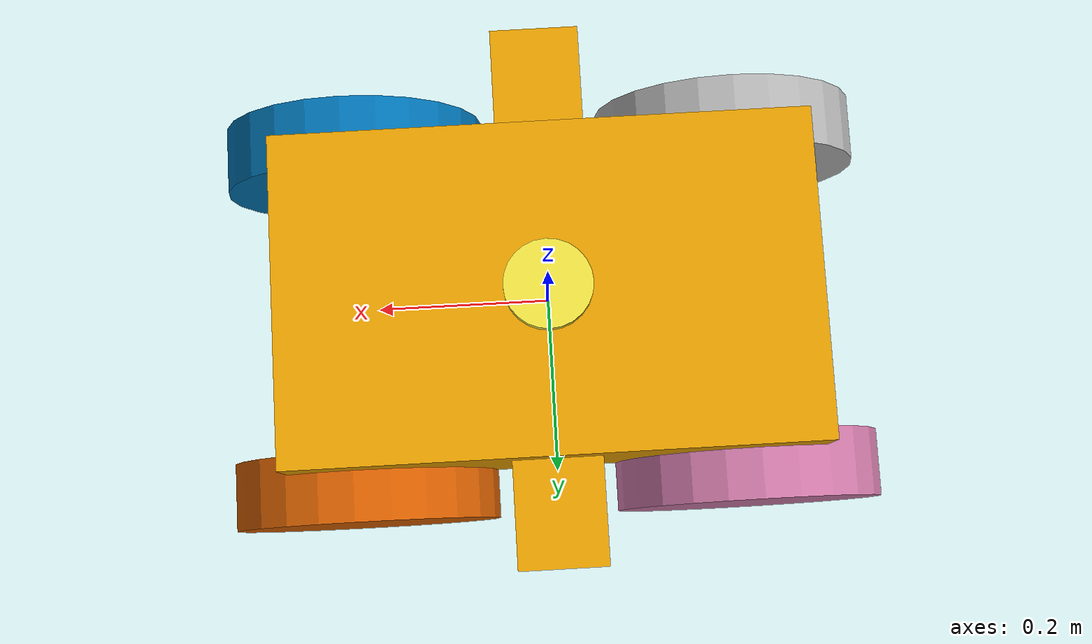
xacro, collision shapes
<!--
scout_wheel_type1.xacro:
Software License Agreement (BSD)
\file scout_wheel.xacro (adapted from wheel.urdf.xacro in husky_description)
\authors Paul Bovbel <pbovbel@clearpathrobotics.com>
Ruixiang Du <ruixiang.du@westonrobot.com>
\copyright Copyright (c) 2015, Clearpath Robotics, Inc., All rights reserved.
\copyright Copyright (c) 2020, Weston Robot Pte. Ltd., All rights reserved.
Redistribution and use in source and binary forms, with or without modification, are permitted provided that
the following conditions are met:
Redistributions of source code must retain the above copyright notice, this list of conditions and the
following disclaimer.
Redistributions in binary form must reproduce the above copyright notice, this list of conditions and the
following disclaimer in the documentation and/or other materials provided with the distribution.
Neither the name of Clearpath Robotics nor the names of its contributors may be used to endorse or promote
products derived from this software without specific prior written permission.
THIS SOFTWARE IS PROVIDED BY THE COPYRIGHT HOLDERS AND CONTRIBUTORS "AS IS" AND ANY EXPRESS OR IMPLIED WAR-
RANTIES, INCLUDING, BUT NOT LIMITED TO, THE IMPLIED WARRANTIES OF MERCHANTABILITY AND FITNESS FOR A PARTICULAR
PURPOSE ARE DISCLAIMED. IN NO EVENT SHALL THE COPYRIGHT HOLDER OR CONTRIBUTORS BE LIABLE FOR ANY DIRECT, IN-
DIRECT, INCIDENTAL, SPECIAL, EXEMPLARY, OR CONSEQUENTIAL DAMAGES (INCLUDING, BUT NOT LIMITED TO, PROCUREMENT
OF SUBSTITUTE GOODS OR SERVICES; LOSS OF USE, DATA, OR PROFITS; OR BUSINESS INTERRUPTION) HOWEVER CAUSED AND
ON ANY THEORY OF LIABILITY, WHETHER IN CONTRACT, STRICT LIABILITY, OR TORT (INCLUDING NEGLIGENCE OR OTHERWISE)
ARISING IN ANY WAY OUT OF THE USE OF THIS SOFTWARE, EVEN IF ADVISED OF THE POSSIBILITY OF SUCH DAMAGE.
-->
<?xml version="1.0"?>

<robot name="scout_v2"
    xmlns:xacro="http://ros.org/wiki/xacro">

    <xacro:arg name="robot_namespace" default="/" />

    <xacro:include filename="$(find scout_description)/urdf/scout_wheel_type1.xacro" />
    <xacro:include filename="$(find scout_description)/urdf/scout_wheel_type2.xacro" />
    <xacro:include filename="$(find scout_description)/urdf/scout_wheel_type3.xacro" />
    <xacro:include filename="$(find scout_description)/urdf/scout_wheel_type4.xacro" />
    <!-- Variables -->
    <xacro:property name="M_PI" value="3.14159"/>

    <!-- Vehicle Geometries -->

    <!-- mini -->
    <xacro:property name="base_x_size" value="0.6200000" />
    <xacro:property name="base_y_size" value="0.380000" />
    <xacro:property name="base_z_size" value="0.210000" />

    <xacro:property name="wheelbase" value="0.498" />
    <xacro:property name="track" value="0.58306" />
    <xacro:property name="wheel_vertical_offset" value="-0.0702" />

    <!-- mini -->

    <xacro:property name="wheel_length" value="0.8e-01" />
    <xacro:property name="wheel_radius" value="1.600e-01" />

    <!-- mini -->

    <!-- Base link -->
    <link name="base_link">
        <visual>
            <origin xyz="0 0 0" rpy="1.5708 0 -1.5708" />
            <geometry>
                <mesh filename="package://scout_description/meshes/scout_mini_base_link.dae" />
            </geometry>
        </visual>
        <collision>
            <origin xyz="0 0 0.008" rpy="0 0 0" />
            <geometry>
                <box size="${base_x_size} ${base_y_size} ${base_z_size}"/>
            </geometry>
        </collision>
        <collision>
            <origin xyz="0 0 ${base_z_size/6}" rpy="0 0 0" />
            <geometry>
                <box size="${base_x_size/6} ${base_y_size*1.65} ${base_z_size/3}"/>
            </geometry>
        </collision>
    </link>

    <link name="base_footprint"/>

    <joint name="base_footprint_joint" type="fixed">
        <origin xyz="0 0 ${wheel_vertical_offset - wheel_radius}" rpy="0 0 0" />
        <parent link="base_link" />
        <child link="base_footprint" />
    </joint>

    <link name="inertial_link">
        <inertial>
            <mass value="40" />
            <origin xyz="0.0 0.0 0.0" />
            <inertia ixx="2.288641" ixy="0" ixz="0" iyy="5.103976" iyz="0" izz="3.431465" />
        </inertial>
    </link>

    <joint name="inertial_joint" type="fixed">
        <origin xyz="0 0 0" rpy="0 0 0" />
        <parent link="base_link" />
        <child link="inertial_link" />
    </joint>

    <link name="lidar_link">
        <inertial>
            <origin xyz="0 0 0" rpy="0 0 0"/>
            <mass value="0.125"/>
            <inertia ixx="0.001"  ixy="0"  ixz="0" iyy="0.001" iyz="0" izz="0.001" />
        </inertial>

        <collision>
            <origin xyz="0 0 0" rpy="0 0 0"/>
            <geometry>
                <cylinder radius="0.0508" length="0.055"/>
            </geometry>
        </collision>

        <visual>
            <origin xyz="0 0 0" rpy="0 0 0"/>
            <geometry>
                <cylinder radius="0.0508" length="0.055"/>
            </geometry>
        </visual>
    </link>

    <joint name="lidar_joint" type="fixed">
        <parent link="base_link"/>
        <child link="lidar_link"/>
        <origin xyz="0 0 0.1" rpy="0 0 0"/>
    </joint>

    <!-- Scout wheel macros -->
    <!-- wheel labeled from 0 to 3, conter-clockwise, starting from front right wheel -->
    <!-- motor 1 and 2 (left side) are mechanically installed in a reversed direction -->
    <xacro:scout_wheel_type1 wheel_prefix="front_right">
        <origin xyz="${wheelbase/2} ${-track/2} ${wheel_vertical_offset}" rpy="3.14 0 0" />
    </xacro:scout_wheel_type1>
    <xacro:scout_wheel_type2 wheel_prefix="front_left">
        <origin xyz="${wheelbase/2} ${track/2} ${wheel_vertical_offset}" rpy="0 0 0" />
    </xacro:scout_wheel_type2>
    <xacro:scout_wheel_type3 wheel_prefix="rear_left">
        <origin xyz="${-wheelbase/2} ${track/2} ${wheel_vertical_offset}" rpy="0 0 0" />
    </xacro:scout_wheel_type3>
    <xacro:scout_wheel_type4 wheel_prefix="rear_right">
        <origin xyz="${-wheelbase/2} ${-track/2} ${wheel_vertical_offset}" rpy="3.14 0 0" />
    </xacro:scout_wheel_type4>

</robot>

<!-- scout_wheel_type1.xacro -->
<robot xmlns:xacro="http://ros.org/wiki/xacro" name="scout_wheel">

    <xacro:macro name="scout_wheel_type1" params="wheel_prefix *joint_pose">
        <link name="${wheel_prefix}_wheel_link">
            <inertial>
                <mass value="3" />
                <origin xyz="0 0 0" />
                <inertia ixx="0.7171" ixy="0" ixz="0" iyy="0.1361" iyz="0" izz="0.7171" />
            </inertial>
            <visual>
                <origin xyz="0 0 0" rpy="-1.5708 0 0" />
                <geometry>
                    <mesh filename="package://scout_description/meshes/wheel.dae" />
                </geometry>
            </visual>
            <collision>
                <origin xyz="0 0 0" rpy="${M_PI/2} 0 0" />
                <geometry>
                    <cylinder length="${wheel_length}" radius="${wheel_radius}" />
                </geometry>
            </collision>
        </link>

        <joint name="${wheel_prefix}_wheel" type="fixed">
            <parent link="base_link"/>
            <child link="${wheel_prefix}_wheel_link"/>
            <origin
                  xyz="0.2319755 -0.2082515 -0.100998"
                  rpy="0 1.57 3.14159" />
        </joint>
    </xacro:macro>

</robot>

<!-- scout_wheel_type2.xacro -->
<robot xmlns:xacro="http://ros.org/wiki/xacro" name="scout_wheel">

    <xacro:macro name="scout_wheel_type2" params="wheel_prefix *joint_pose">
        <link name="${wheel_prefix}_wheel_link">
            <inertial>
                <mass value="3" />
                <origin xyz="0 0 0" />
                <inertia ixx="0.7171" ixy="0" ixz="0" iyy="0.1361" iyz="0" izz="0.7171" />
            </inertial>
            <visual>
                <origin xyz="0 0 0" rpy="-1.5708 0 0" />
                <geometry>
                    <mesh filename="package://scout_description/meshes/wheel.dae" />
                </geometry>
            </visual>
            <collision>
                <origin xyz="0 0 0" rpy="${M_PI/2} 0 0" />
                <geometry>
                    <cylinder length="${wheel_length}" radius="${wheel_radius}" />
                </geometry>
            </collision>
        </link>

        <joint name="${wheel_prefix}_wheel" type="fixed">
            <parent link="base_link"/>
            <child link="${wheel_prefix}_wheel_link"/>
            <origin
                  xyz="0.2319755 0.2082515 -0.100998"
                  rpy="0 1.57 0" />
        </joint>
    </xacro:macro>

</robot>

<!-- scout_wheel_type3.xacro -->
<robot xmlns:xacro="http://ros.org/wiki/xacro" name="scout_wheel">

    <xacro:macro name="scout_wheel_type3" params="wheel_prefix *joint_pose">
        <link name="${wheel_prefix}_wheel_link">
            <inertial>
                <mass value="3" />
                <origin xyz="0 0 0" />
                <inertia ixx="0.7171" ixy="0" ixz="0" iyy="0.1361" iyz="0" izz="0.7171" />
            </inertial>
            <visual>
                <origin xyz="0 0 0" rpy="-1.5708 0 0" />
                <geometry>
                    <mesh filename="package://scout_description/meshes/wheel.dae" />
                </geometry>
            </visual>
            <collision>
                <origin xyz="0 0 0" rpy="${M_PI/2} 0 0" />
                <geometry>
                    <cylinder length="${wheel_length}" radius="${wheel_radius}" />
                </geometry>
            </collision>
        </link>

        <joint name="${wheel_prefix}_wheel" type="fixed">
            <parent link="base_link"/>
            <child link="${wheel_prefix}_wheel_link"/>
            <origin
                  xyz="-0.2319755 0.2082515 -0.100998"
                  rpy="0 1.57 0" />
        </joint>
    </xacro:macro>

</robot>

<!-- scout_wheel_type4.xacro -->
<robot xmlns:xacro="http://ros.org/wiki/xacro" name="scout_wheel">

    <xacro:macro name="scout_wheel_type4" params="wheel_prefix *joint_pose">
        <link name="${wheel_prefix}_wheel_link">
            <inertial>
                <mass value="3" />
                <origin xyz="0 0 0" />
                <inertia ixx="0.7171" ixy="0" ixz="0" iyy="0.1361" iyz="0" izz="0.7171" />
            </inertial>
            <visual>
                <origin xyz="0 0 0" rpy="-1.5708 0 0" />
                <geometry>
                    <mesh filename="package://scout_description/meshes/wheel.dae" />
                </geometry>
            </visual>
            <collision>
                <origin xyz="0 0 0" rpy="${M_PI/2} 0 0" />
                <geometry>
                    <cylinder length="${wheel_length}" radius="${wheel_radius}" />
                </geometry>
            </collision>
        </link>

        <joint name="${wheel_prefix}_wheel" type="fixed">
            <parent link="base_link"/>
            <child link="${wheel_prefix}_wheel_link"/>
            <origin
                  xyz="-0.2319755 -0.2082515 -0.100998"
                  rpy="0 1.57 3.14159" />
        </joint>
    </xacro:macro>

</robot>
